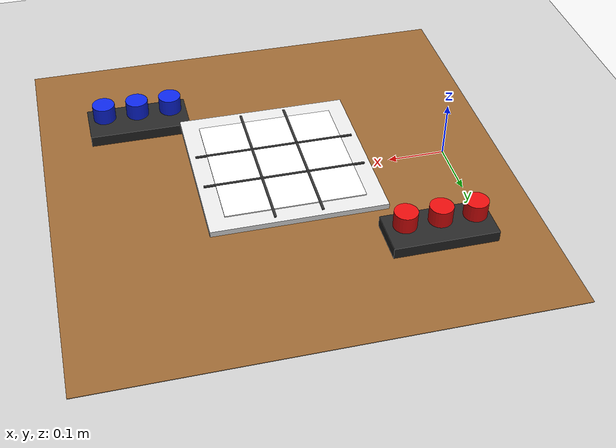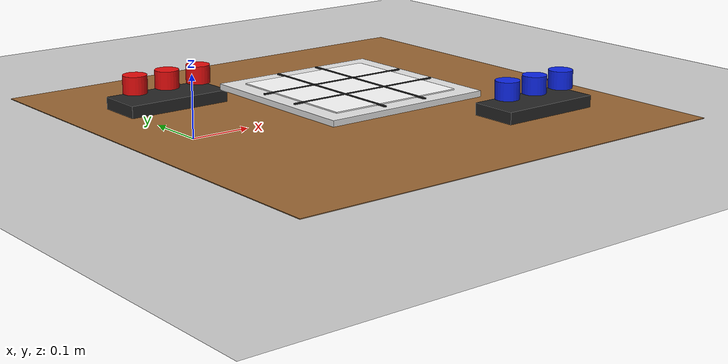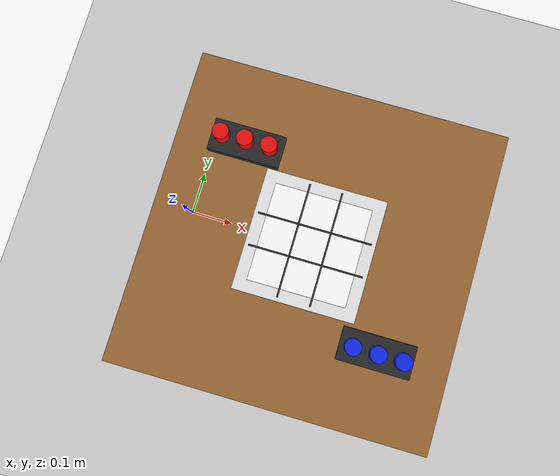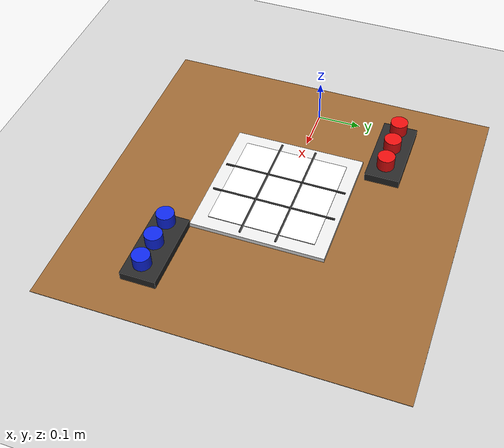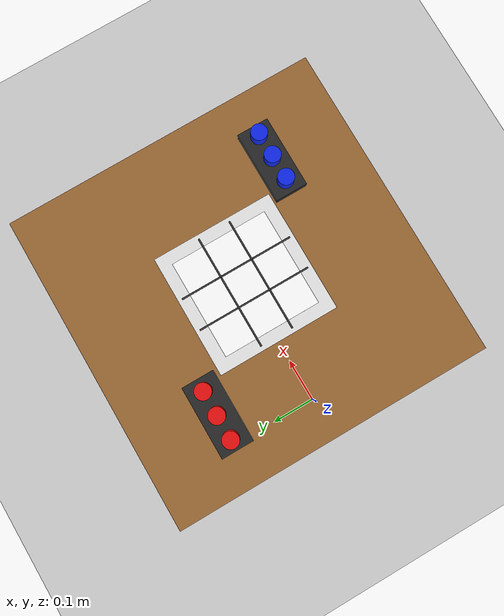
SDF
<?xml version="1.0" ?>
<sdf version="1.8">

  <world name="tictactoe_world">

    <light name="sun" type="directional">
      <pose>0 0 10 0 0 0</pose>
      <cast_shadows>true</cast_shadows>
      <diffuse>0.8 0.8 0.8 1</diffuse>
      <specular>0.2 0.2 0.2 1</specular>
      <direction>-0.5 0.1 -0.9</direction>
    </light>

    <model name="ground_plane">
      <static>true</static>
      <link name="link">
        <collision name="collision">
          <geometry>
            <plane>
              <normal>0 0 1</normal>
              <size>100 100</size>
            </plane>
          </geometry>
        </collision>
        <visual name="visual">
          <geometry>
            <plane>
              <normal>0 0 1</normal>
              <size>100 100</size>
            </plane>
          </geometry>
          <material>
            <ambient>0.8 0.8 0.8 1</ambient>
            <diffuse>0.8 0.8 0.8 1</diffuse>
            <specular>0.8 0.8 0.8 1</specular>
          </material>
        </visual>
      </link>
    </model>

    <model name="tictactoe_table">
      <static>true</static>
      <pose>0.3 0.0 -0.025 0 0 0</pose>
      <link name="link">
        <collision name="collision">
          <geometry>
            <box>
              <size>0.8 0.8 0.05</size>
            </box>
          </geometry>
        </collision>
        <visual name="visual">
          <geometry>
            <box>
              <size>0.8 0.8 0.05</size>
            </box>
          </geometry>
          <material>
            <ambient>0.6 0.4 0.2 1</ambient>
            <diffuse>0.6 0.4 0.2 1</diffuse>
          </material>
        </visual>
      </link>
    </model>

    <model name="tictactoe_board">
      <static>true</static>
      <pose>0.3 0.0 0.03 0 0 0</pose>

      <link name="base_link">
        <collision name="collision">
          <geometry>
            <box>
              <size>0.3 0.3 0.01</size>
            </box>
          </geometry>
        </collision>
        <visual name="visual">
          <geometry>
            <box>
              <size>0.3 0.3 0.01</size>
            </box>
          </geometry>
          <material>
            <ambient>0.9 0.9 0.9 1</ambient>
            <diffuse>0.9 0.9 0.9 1</diffuse>
          </material>
        </visual>
      </link>

      <link name="cell_0_0">
        <pose>-0.08 0.08 0.006 0 0 0</pose>
        <visual name="visual">
          <geometry><box><size>0.08 0.08 0.002</size></box></geometry>
          <material>
            <ambient>1 1 1 1</ambient>
            <diffuse>1 1 1 1</diffuse>
            <pbr>
              <metal>
                <albedo_map>/home/boyfriend51/temp/team2/project2/models/textures/aruco_marker_0.png</albedo_map>
                <roughness>1.0</roughness>
                <metalness>0.0</metalness>
              </metal>
            </pbr>
          </material>
        </visual>
      </link>

      <link name="cell_0_1">
        <pose>0 0.08 0.006 0 0 0</pose>
        <visual name="visual">
          <geometry><box><size>0.08 0.08 0.002</size></box></geometry>
          <material>
            <ambient>1 1 1 1</ambient>
            <diffuse>1 1 1 1</diffuse>
            <pbr>
              <metal>
                <albedo_map>/home/boyfriend51/temp/team2/project2/models/textures/aruco_marker_1.png</albedo_map>
                <roughness>1.0</roughness>
                <metalness>0.0</metalness>
              </metal>
            </pbr>
          </material>
        </visual>
      </link>

      <link name="cell_0_2">
        <pose>0.08 0.08 0.006 0 0 0</pose>
        <visual name="visual">
          <geometry><box><size>0.08 0.08 0.002</size></box></geometry>
          <material>
            <ambient>1 1 1 1</ambient>
            <diffuse>1 1 1 1</diffuse>
            <pbr>
              <metal>
                <albedo_map>/home/boyfriend51/temp/team2/project2/models/textures/aruco_marker_2.png</albedo_map>
                <roughness>1.0</roughness>
                <metalness>0.0</metalness>
              </metal>
            </pbr>
          </material>
        </visual>
      </link>

      <link name="cell_1_0">
        <pose>-0.08 0 0.006 0 0 0</pose>
        <visual name="visual">
          <geometry><box><size>0.08 0.08 0.002</size></box></geometry>
          <material>
            <ambient>1 1 1 1</ambient>
            <diffuse>1 1 1 1</diffuse>
            <pbr>
              <metal>
                <albedo_map>/home/boyfriend51/temp/team2/project2/models/textures/aruco_marker_3.png</albedo_map>
                <roughness>1.0</roughness>
                <metalness>0.0</metalness>
              </metal>
            </pbr>
          </material>
        </visual>
      </link>

      <link name="cell_1_1">
        <pose>0 0 0.006 0 0 0</pose>
        <visual name="visual">
          <geometry><box><size>0.08 0.08 0.002</size></box></geometry>
          <material>
            <ambient>1 1 1 1</ambient>
            <diffuse>1 1 1 1</diffuse>
            <pbr>
              <metal>
                <albedo_map>/home/boyfriend51/temp/team2/project2/models/textures/aruco_marker_4.png</albedo_map>
                <roughness>1.0</roughness>
                <metalness>0.0</metalness>
              </metal>
            </pbr>
          </material>
        </visual>
      </link>

      <link name="cell_1_2">
        <pose>0.08 0 0.006 0 0 0</pose>
        <visual name="visual">
          <geometry><box><size>0.08 0.08 0.002</size></box></geometry>
          <material>
            <ambient>1 1 1 1</ambient>
            <diffuse>1 1 1 1</diffuse>
            <pbr>
              <metal>
                <albedo_map>/home/boyfriend51/temp/team2/project2/models/textures/aruco_marker_5.png</albedo_map>
                <roughness>1.0</roughness>
                <metalness>0.0</metalness>
              </metal>
            </pbr>
          </material>
        </visual>
      </link>

      <link name="cell_2_0">
        <pose>-0.08 -0.08 0.006 0 0 0</pose>
        <visual name="visual">
          <geometry><box><size>0.08 0.08 0.002</size></box></geometry>
          <material>
            <ambient>1 1 1 1</ambient>
            <diffuse>1 1 1 1</diffuse>
            <pbr>
              <metal>
                <albedo_map>/home/boyfriend51/temp/team2/project2/models/textures/aruco_marker_6.png</albedo_map>
                <roughness>1.0</roughness>
                <metalness>0.0</metalness>
              </metal>
            </pbr>
          </material>
        </visual>
      </link>

      <link name="cell_2_1">
        <pose>0 -0.08 0.006 0 0 0</pose>
        <visual name="visual">
          <geometry><box><size>0.08 0.08 0.002</size></box></geometry>
          <material>
            <ambient>1 1 1 1</ambient>
            <diffuse>1 1 1 1</diffuse>
            <pbr>
              <metal>
                <albedo_map>/home/boyfriend51/temp/team2/project2/models/textures/aruco_marker_7.png</albedo_map>
                <roughness>1.0</roughness>
                <metalness>0.0</metalness>
              </metal>
            </pbr>
          </material>
        </visual>
      </link>

      <link name="cell_2_2">
        <pose>0.08 -0.08 0.006 0 0 0</pose>
        <visual name="visual">
          <geometry><box><size>0.08 0.08 0.002</size></box></geometry>
          <material>
            <ambient>1 1 1 1</ambient>
            <diffuse>1 1 1 1</diffuse>
            <pbr>
              <metal>
                <albedo_map>/home/boyfriend51/temp/team2/project2/models/textures/aruco_marker_8.png</albedo_map>
                <roughness>1.0</roughness>
                <metalness>0.0</metalness>
              </metal>
            </pbr>
          </material>
        </visual>
      </link>

      <link name="v_line_1">
        <pose>-0.04 0 0.007 0 0 0</pose>
        <visual name="visual">
          <geometry><box><size>0.004 0.28 0.002</size></box></geometry>
          <material><ambient>0.2 0.2 0.2 1</ambient><diffuse>0.2 0.2 0.2 1</diffuse></material>
        </visual>
      </link>

      <link name="v_line_2">
        <pose>0.04 0 0.007 0 0 0</pose>
        <visual name="visual">
          <geometry><box><size>0.004 0.28 0.002</size></box></geometry>
          <material><ambient>0.2 0.2 0.2 1</ambient><diffuse>0.2 0.2 0.2 1</diffuse></material>
        </visual>
      </link>

      <link name="h_line_1">
        <pose>0 -0.04 0.007 0 0 0</pose>
        <visual name="visual">
          <geometry><box><size>0.28 0.004 0.002</size></box></geometry>
          <material><ambient>0.2 0.2 0.2 1</ambient><diffuse>0.2 0.2 0.2 1</diffuse></material>
        </visual>
      </link>

      <link name="h_line_2">
        <pose>0 0.04 0.007 0 0 0</pose>
        <visual name="visual">
          <geometry><box><size>0.28 0.004 0.002</size></box></geometry>
          <material><ambient>0.2 0.2 0.2 1</ambient><diffuse>0.2 0.2 0.2 1</diffuse></material>
        </visual>
      </link>
    </model>

    <!-- ROBOT 게임 말 공급대 -->
<model name="robot_piece_supply">
  <static>true</static>

  <!-- 게임판 오른쪽 바깥 -->
  <pose>0.52 -0.20 0.01 0 0 0</pose>

  <link name="link">
    <collision name="collision">
      <geometry>
        <box>
          <size>0.18 0.08 0.02</size>
        </box>
      </geometry>
    </collision>

    <visual name="visual">
      <geometry>
        <box>
          <size>0.18 0.08 0.02</size>
        </box>
      </geometry>

      <material>
        <ambient>0.15 0.15 0.15 1</ambient>
        <diffuse>0.15 0.15 0.15 1</diffuse>
      </material>
    </visual>
  </link>
</model>

<!-- ROBOT용 파란색 게임 말 0 -->
<model name="robot_piece_0">
  <pose>0.46 -0.20 0.045 0 0 0</pose>

  <link name="link">
    <inertial>
      <mass>0.02</mass>

      <inertia>
        <ixx>0.000002</ixx>
        <iyy>0.000002</iyy>
        <izz>0.000004</izz>
      </inertia>
    </inertial>

    <collision name="collision">
      <geometry>
        <cylinder>
          <radius>0.02</radius>
          <length>0.03</length>
        </cylinder>
      </geometry>
    </collision>

    <visual name="visual">
      <geometry>
        <cylinder>
          <radius>0.02</radius>
          <length>0.03</length>
        </cylinder>
      </geometry>

      <material>
        <ambient>0.05 0.15 0.9 1</ambient>
        <diffuse>0.05 0.15 0.9 1</diffuse>
      </material>
    </visual>
  </link>
</model>

<!-- ROBOT용 파란색 게임 말 1 -->
<model name="robot_piece_1">
  <pose>0.52 -0.20 0.045 0 0 0</pose>

  <link name="link">
    <inertial>
      <mass>0.02</mass>

      <inertia>
        <ixx>0.000002</ixx>
        <iyy>0.000002</iyy>
        <izz>0.000004</izz>
      </inertia>
    </inertial>

    <collision name="collision">
      <geometry>
        <cylinder>
          <radius>0.02</radius>
          <length>0.03</length>
        </cylinder>
      </geometry>
    </collision>

    <visual name="visual">
      <geometry>
        <cylinder>
          <radius>0.02</radius>
          <length>0.03</length>
        </cylinder>
      </geometry>

      <material>
        <ambient>0.05 0.15 0.9 1</ambient>
        <diffuse>0.05 0.15 0.9 1</diffuse>
      </material>
    </visual>
  </link>
</model>

<!-- ROBOT용 파란색 게임 말 2 -->
<model name="robot_piece_2">
  <pose>0.58 -0.20 0.045 0 0 0</pose>

  <link name="link">
    <inertial>
      <mass>0.02</mass>

      <inertia>
        <ixx>0.000002</ixx>
        <iyy>0.000002</iyy>
        <izz>0.000004</izz>
      </inertia>
    </inertial>

    <collision name="collision">
      <geometry>
        <cylinder>
          <radius>0.02</radius>
          <length>0.03</length>
        </cylinder>
      </geometry>
    </collision>

    <visual name="visual">
      <geometry>
        <cylinder>
          <radius>0.02</radius>
          <length>0.03</length>
        </cylinder>
      </geometry>

      <material>
        <ambient>0.05 0.15 0.9 1</ambient>
        <diffuse>0.05 0.15 0.9 1</diffuse>
      </material>
    </visual>
  </link>
</model>

<!-- HUMAN 게임 말 공급대 -->
<model name="human_piece_supply">
  <static>true</static>
  <pose>0.08 0.20 0.01 0 0 0</pose>

  <link name="link">
    <collision name="collision">
      <geometry>
        <box>
          <size>0.18 0.08 0.02</size>
        </box>
      </geometry>
    </collision>

    <visual name="visual">
      <geometry>
        <box>
          <size>0.18 0.08 0.02</size>
        </box>
      </geometry>

      <material>
        <ambient>0.15 0.15 0.15 1</ambient>
        <diffuse>0.15 0.15 0.15 1</diffuse>
      </material>
    </visual>
  </link>
</model>

<!-- HUMAN용 빨간색 게임 말 0 -->
<model name="human_piece_0">
  <pose>0.02 0.20 0.045 0 0 0</pose>

  <link name="link">
    <inertial>
      <mass>0.02</mass>

      <inertia>
        <ixx>0.000002</ixx>
        <iyy>0.000002</iyy>
        <izz>0.000004</izz>
      </inertia>
    </inertial>

    <collision name="collision">
      <geometry>
        <cylinder>
          <radius>0.02</radius>
          <length>0.03</length>
        </cylinder>
      </geometry>
    </collision>

    <visual name="visual">
      <geometry>
        <cylinder>
          <radius>0.02</radius>
          <length>0.03</length>
        </cylinder>
      </geometry>

      <material>
        <ambient>0.9 0.05 0.05 1</ambient>
        <diffuse>0.9 0.05 0.05 1</diffuse>
      </material>
    </visual>
  </link>
</model>

<!-- HUMAN용 빨간색 게임 말 1 -->
<model name="human_piece_1">
  <pose>0.08 0.20 0.045 0 0 0</pose>

  <link name="link">
    <inertial>
      <mass>0.02</mass>

      <inertia>
        <ixx>0.000002</ixx>
        <iyy>0.000002</iyy>
        <izz>0.000004</izz>
      </inertia>
    </inertial>

    <collision name="collision">
      <geometry>
        <cylinder>
          <radius>0.02</radius>
          <length>0.03</length>
        </cylinder>
      </geometry>
    </collision>

    <visual name="visual">
      <geometry>
        <cylinder>
          <radius>0.02</radius>
          <length>0.03</length>
        </cylinder>
      </geometry>

      <material>
        <ambient>0.9 0.05 0.05 1</ambient>
        <diffuse>0.9 0.05 0.05 1</diffuse>
      </material>
    </visual>
  </link>
</model>

<!-- HUMAN용 빨간색 게임 말 2 -->
<model name="human_piece_2">
  <pose>0.14 0.20 0.045 0 0 0</pose>

  <link name="link">
    <inertial>
      <mass>0.02</mass>

      <inertia>
        <ixx>0.000002</ixx>
        <iyy>0.000002</iyy>
        <izz>0.000004</izz>
      </inertia>
    </inertial>

    <collision name="collision">
      <geometry>
        <cylinder>
          <radius>0.02</radius>
          <length>0.03</length>
        </cylinder>
      </geometry>
    </collision>

    <visual name="visual">
      <geometry>
        <cylinder>
          <radius>0.02</radius>
          <length>0.03</length>
        </cylinder>
      </geometry>

      <material>
        <ambient>0.9 0.05 0.05 1</ambient>
        <diffuse>0.9 0.05 0.05 1</diffuse>
      </material>
    </visual>
  </link>
</model>

  </world>
</sdf>
